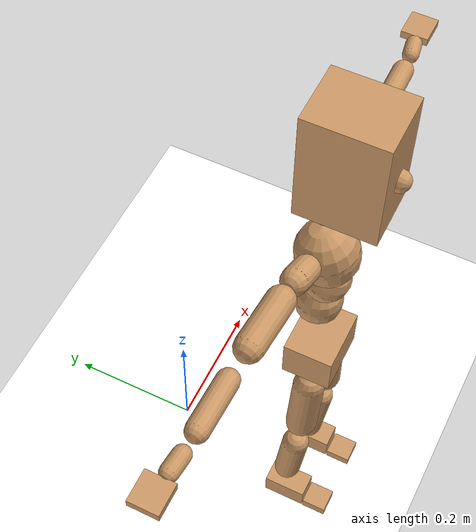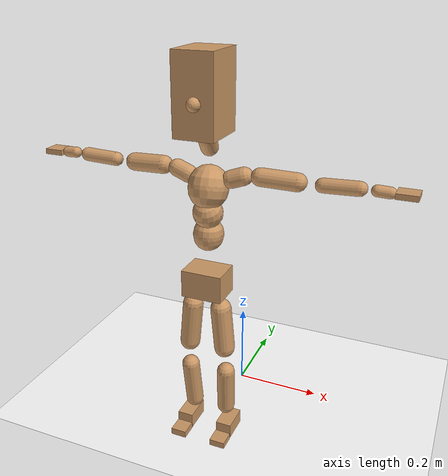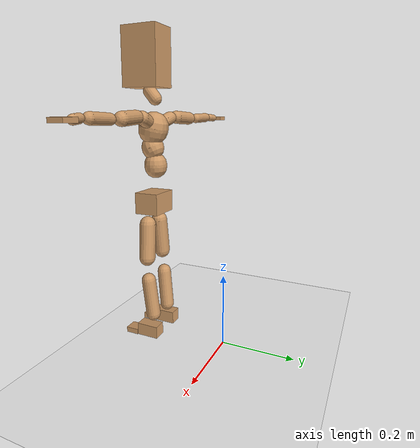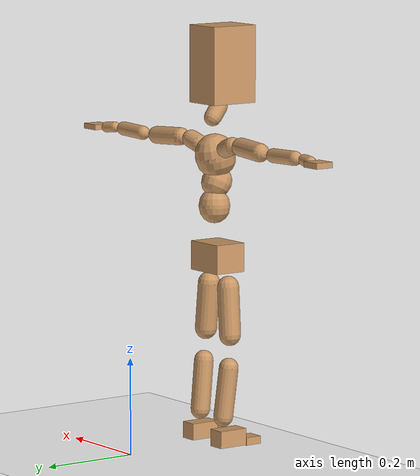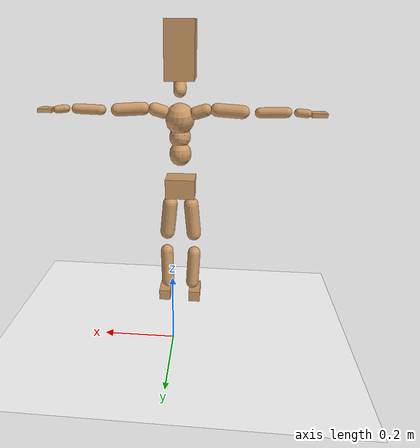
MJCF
<mujoco model="humanoid">
  <option integrator="implicitfast" />

  <visual>
    <global offwidth="1280" offheight="960" />
    <headlight active="1" ambient="0.34 0.34 0.34" diffuse="0.5 0.5 0.5" />
  </visual>

  <default>
    <joint damping="2" stiffness="2" armature="0.01" limited="true" solimplimit="0 .99 .01" />
    <geom condim="1" friction="0.7 0.005 0.0001" solimp=".99 .99 .003" solref="0.015 1" margin="0.001" rgba="0.8 0.6 .4 1" />
    <default class="smplcontact">
      <geom condim="3" friction="1. 0.005 0.0001" solref="0.015 1" solimp="0.98 0.98 0.001" priority="1" />
    </default>
    <default class="stiff_medium">
      <joint stiffness="10" />
    </default>
    <default class="stiff_medium_higher">
      <joint stiffness="50" />
    </default>
    <default class="stiff_high">
      <joint stiffness="100" />
    </default>
  </default>

  <asset>
    <texture type="skybox" builtin="gradient" rgb1="0.99 0.99 0.99" rgb2="0.608 0.828 0.892" width="100" />
    <texture builtin="flat" height="1278" mark="cross" markrgb="1 1 1" name="texgeom" random="0.01" rgb1="0.8 0.6 0.4" rgb2="0.8 0.6 0.4" type="cube" width="127" />
    <texture name="texplane" type="2d" builtin="checker" markrgb="1 1 1" rgb1="0.756 0.772 0.76" rgb2="0.6 0.6 0.6" width="100" height="100" />
    <material name="MatPlane" reflectance="0.5" texture="texplane" texrepeat="1 1" texuniform="true" />
    <material name="geom" texture="texgeom" texuniform="true" />
  </asset>

  <worldbody>
    <light name="tracking_light" pos="0 0 7" dir="0 0 -1" directional="true" cutoff="100" exponent="1" diffuse="1 1 1" specular="0.1 0.1 0.1" mode="trackcom" />
    <camera name="back" pos="0 3 2.4" xyaxes="-1 0 0 0 -1 2" mode="trackcom" />
    <camera name="side" pos="-3 0 2.4" xyaxes="0 -1 0 1 0 2" mode="trackcom" />
    <camera name="front_side" pos="-2.8 -2.8 0.8" xyaxes="0.5 -0.5 0 0.1 0.1 1" mode="trackcom" />
    <geom condim="3" name="floor" pos="0 0 0" rgba="1 1 1 1" size="100 100 .2" type="plane" material="MatPlane" />
    <body name="Pelvis" pos="-0.0018 -0.2233 0.402613" euler="90 0 0">
      <site name="Pelvis" size="0.01" />
      <freejoint name="Pelvis" />
      <geom type="box" pos="-0.0000 -0.0121 -0.0055" size="0.0445263 0.0300729 0.0345714" quat="1.0000 0.0000 0.0000 0.0000" density="3165.830099" name="Pelvis" />
      <body name="L_Hip" pos="0.0299683 -0.0394116 -0.00293215">
        <joint name="L_Hip_x" type="hinge" pos="0 0 0" axis="1 0 0" stiffness="10" range="-160.0 22.92" class="stiff_medium" damping="15" />
        <joint name="L_Hip_y" type="hinge" pos="0 0 0" axis="0 1 0" stiffness="10" range="-70.0 70.0" class="stiff_medium" damping="10" />
        <joint name="L_Hip_z" type="hinge" pos="0 0 0" axis="0 0 1" stiffness="10" range="-28.65 90.0" class="stiff_medium" damping="10" />
        <geom type="capsule" density="2040.816327" fromto="0.00297527 -0.0323399 -0.000388079 0.0118148 -0.129446 -0.00155232" size="0.02284" name="L_Hip" />
        <body name="L_Knee" pos="0.0147901 -0.161786 -0.00194039">
          <joint name="L_Knee_x" type="hinge" pos="0 0 0" axis="1 0 0" range="-5.16 171.89" damping="8" />
          <joint name="L_Knee_y" type="hinge" pos="0 0 0" axis="0 1 0" range="-4.58 6.88" damping="8" />
          <joint name="L_Knee_z" type="hinge" pos="0 0 0" axis="0 0 1" range="-6.88 4.58" damping="8" />
          <geom type="capsule" density="1234.567901" fromto="-0.00116424 -0.0343234 -0.00375143 -0.00470007 -0.137294 -0.015092" size="0.0200918" name="L_Knee" />
          <body name="L_Ankle" pos="-0.0058643 -0.171617 -0.0188434">
            <joint name="L_Ankle_x" type="hinge" pos="0 0 0" axis="1 0 0" range="-45.84 45.84" class="stiff_medium" damping="6" />
            <joint name="L_Ankle_y" type="hinge" pos="0 0 0" axis="0 1 0" range="-74.48 22.92" class="stiff_medium" damping="3" />
            <joint name="L_Ankle_z" type="hinge" pos="0 0 0" axis="0 0 1" range="-4.58 4.58" class="stiff_medium" damping="6" />
            <geom type="box" pos="0.0100469 -0.0103057 0.010435" size="0.0179378 0.0172321 0.0315675" quat="1.0000 0.0000 0.0000 0.0000" density="449.071558" name="L_Ankle" class="smplcontact" />
            <body name="L_Toe" pos="0.0113836 -0.0240609 0.051442">
              <joint name="L_Toe_x" type="hinge" pos="0 0 0" axis="1 0 0" range="-91.67 22.92" />
              <joint name="L_Toe_y" type="hinge" pos="0 0 0" axis="0 1 0" range="-4.58 4.58" />
              <joint name="L_Toe_z" type="hinge" pos="0 0 0" axis="0 0 1" range="-4.58 4.58" />
              <geom type="box" pos="-0.0012936 0.00237159 0.0106937" size="0.0177521 0.00742765 0.0184206" quat="1.0000 0.0000 0.0000 0.0000" density="423.206892" name="L_Toe" class="smplcontact" />
            </body>
          </body>
        </body>
      </body>
      <body name="R_Hip" pos="-0.0291922 -0.0390235 -0.00185416">
        <joint name="R_Hip_x" type="hinge" pos="0 0 0" axis="1 0 0" stiffness="10" range="-160.0 22.92" class="stiff_medium" damping="15" />
        <joint name="R_Hip_y" type="hinge" pos="0 0 0" axis="0 1 0" stiffness="10" range="-70.0 70.0" class="stiff_medium" damping="10" />
        <joint name="R_Hip_z" type="hinge" pos="0 0 0" axis="0 0 1" stiffness="10" range="-90.0 28.65" class="stiff_medium" damping="10" />
        <geom type="capsule" density="2040.816327" fromto="-0.00332023 -0.0329867 -0.000776158 -0.0131947 -0.13199 -0.00306151" size="0.0225058" name="R_Hip" />
        <body name="R_Knee" pos="-0.0165149 -0.164977 -0.00383767">
          <joint name="R_Knee_x" type="hinge" pos="0 0 0" axis="1 0 0" range="-5.16 171.89" damping="8" />
          <joint name="R_Knee_y" type="hinge" pos="0 0 0" axis="0 1 0" range="-6.88 4.58" damping="8" />
          <joint name="R_Knee_z" type="hinge" pos="0 0 0" axis="0 0 1" range="-4.58 6.88" damping="8" />
          <geom type="capsule" density="1234.567901" fromto="0.00137984 -0.0343665 -0.00366519 0.00543311 -0.137423 -0.0145745" size="0.0200918" name="R_Knee" />
          <body name="R_Ankle" pos="0.00681294 -0.17179 -0.0182397">
            <joint name="R_Ankle_x" type="hinge" pos="0 0 0" axis="1 0 0" range="-45.84 45.84" class="stiff_medium" damping="6" />
            <joint name="R_Ankle_y" type="hinge" pos="0 0 0" axis="0 1 0" range="-22.92 74.48" class="stiff_medium" damping="3" />
            <joint name="R_Ankle_z" type="hinge" pos="0 0 0" axis="0 0 1" range="-4.58 4.58" class="stiff_medium" damping="6" />
            <geom type="box" pos="-0.00914142 -0.00750286 0.0110387" size="0.0179378 0.0177521 0.0321246" quat="1.0000 0.0000 0.0000 0.0000" density="434.700981" name="R_Ankle" class="smplcontact" />
            <body name="R_Toe" pos="-0.0109525 -0.0207407 0.0531668">
              <joint name="R_Toe_x" type="hinge" pos="0 0 0" axis="1 0 0" range="-91.67 22.92" />
              <joint name="R_Toe_y" type="hinge" pos="0 0 0" axis="0 1 0" range="-4.58 4.58" />
              <joint name="R_Toe_z" type="hinge" pos="0 0 0" axis="0 0 1" range="-4.58 4.58" />
              <geom type="box" pos="0.00181104 0.00194039 0.00978821" size="0.0177892 0.00802186 0.0183092" quat="1.0000 0.0000 0.0000 0.0000" density="407.384095" name="R_Toe" class="smplcontact" />
            </body>
          </body>
        </body>
      </body>
      <body name="Torso" pos="-0.001318 0.0574649 -0.0140763">
        <joint name="Torso_x" type="hinge" pos="0 0 0" axis="1 0 0" range="-25.78 57.3" class="stiff_medium" damping="15" />
        <joint name="Torso_y" type="hinge" pos="0 0 0" axis="0 1 0" range="-57.3 57.3" class="stiff_high" damping="20" />
        <joint name="Torso_z" type="hinge" pos="0 0 0" axis="0 0 1" range="-34.38 34.38" class="stiff_high" damping="20" />
        <geom type="capsule" density="2040.816327" fromto="0.001318 0.0320538 0.000263601 0.0015816 0.039171 0.000316321" size="0.0320306" name="Torso" />
        <body name="Spine" pos="0.00289961 0.0712776 0.000579921">
          <joint name="Spine_x" type="hinge" pos="0 0 0" axis="1 0 0" stiffness="10" range="-25.78 57.3" class="stiff_medium" damping="15" />
          <joint name="Spine_y" type="hinge" pos="0 0 0" axis="0 1 0" stiffness="10" range="-57.3 57.3" class="stiff_high" damping="8" />
          <joint name="Spine_z" type="hinge" pos="0 0 0" axis="0 0 1" stiffness="20" range="-34.38 34.38" class="stiff_high" damping="12" />
          <geom type="capsule" density="2040.816327" fromto="0.000369041 0.0125474 0.00601009 0.000421761 0.0153416 0.00738082" size="0.0314474" name="Spine" />
          <body name="Chest" pos="0.000790802 0.0278889 0.0133909">
            <joint name="Chest_x" type="hinge" pos="0 0 0" axis="1 0 0" stiffness="10" range="-25.78 57.3" class="stiff_medium" damping="15" />
            <joint name="Chest_y" type="hinge" pos="0 0 0" axis="0 1 0" stiffness="10" range="-57.3 57.3" class="stiff_high" damping="8" />
            <joint name="Chest_z" type="hinge" pos="0 0 0" axis="0 0 1" stiffness="20" range="-34.38 34.38" class="stiff_high" damping="12" />
            <geom type="capsule" density="2040.816327" fromto="-0.000474481 0.0359551 -0.00912058 -0.000527201 0.0439159 -0.0111767" size="0.0417356" name="Chest" />
            <body name="Neck" pos="-0.00147616 0.112768 -0.0226169">
              <joint name="Neck_x" type="hinge" pos="0 0 0" axis="1 0 0" range="-28.65 57.3" class="stiff_medium_higher" damping="10" />
              <joint name="Neck_y" type="hinge" pos="0 0 0" axis="0 1 0" range="-40.11 40.11" class="stiff_medium_higher" damping="10" />
              <joint name="Neck_z" type="hinge" pos="0 0 0" axis="0 0 1" range="-40.11 40.11" class="stiff_medium_higher" damping="10" />
              <geom type="capsule" density="1000" fromto="0.000527201 0.00685361 0.00543017 0.00216152 0.0274145 0.021668" size="0.0181604" name="Neck" />
              <body name="Head" pos="0.00393699 0.0492124 0.03884">
                <joint name="Head_x" type="hinge" pos="0 0 0" axis="1 0 0" range="-28.65 57.3" class="stiff_medium_higher" damping="2" />
                <joint name="Head_y" type="hinge" pos="0 0 0" axis="0 1 0" range="-40.11 40.11" class="stiff_medium_higher" damping="2" />
                <joint name="Head_z" type="hinge" pos="0 0 0" axis="0 0 1" range="-40.11 40.11" class="stiff_medium_higher" damping="2" />
                <geom type="box" pos="-0.00317988 0.0663232 -0.00878253" size="0.0418568 0.0797074 0.0524936" quat="1.0000 0.0000 0.0000 0.0000" density="1018.069894" name="Head" />
                <geom type="capsule" name="nose" size="0.0138141 0.00690706" pos="0 0.052998 0.0378557" quat="1 0 0 0" mass="0" contype="0" conaffinity="0" />
              </body>
            </body>
            <body name="L_Thorax" pos="0.0369256 0.0570285 -0.0159792">
              <joint name="L_Thorax_x" type="hinge" pos="0 0 0" axis="1 0 0" range="-10.89 4.58" class="stiff_medium_higher" damping="20" />
              <joint name="L_Thorax_y" type="hinge" pos="0 0 0" axis="0 1 0" range="-28.65 17.19" class="stiff_medium_higher" damping="20" />
              <joint name="L_Thorax_z" type="hinge" pos="0 0 0" axis="0 0 1" range="-31.51 40.11" class="stiff_medium_higher" damping="20" />
              <geom type="capsule" density="1000" fromto="0.0085285 0.00285845 -0.000843478 0.034114 0.0114338 -0.00332705" size="0.0187416" name="L_Thorax" />
              <body name="L_Shoulder" pos="0.0426425 0.0142923 -0.00417053">
                <joint name="L_Shoulder_x" type="hinge" pos="0 0 0" axis="1 0 0" range="-97.4 97.4" class="stiff_medium" damping="6" />
                <joint name="L_Shoulder_y" type="hinge" pos="0 0 0" axis="0 1 0" range="-108.86 80.21" class="stiff_medium" damping="6" />
                <joint name="L_Shoulder_z" type="hinge" pos="0 0 0" axis="0 0 1" range="-97.4 85.94" class="stiff_medium" damping="6" />
                <geom type="capsule" density="1000" fromto="0.0243203 -0.00121836 -0.00257729 0.097328 -0.00477971 -0.0103092" size="0.0185977" name="L_Shoulder" />
                <body name="L_Elbow" pos="0.121648 -0.00599807 -0.0128865">
                  <joint name="L_Elbow_x" type="hinge" pos="0 0 0" axis="1 0 0" range="-17.19 4.58" damping="5" />
                  <joint name="L_Elbow_y" type="hinge" pos="0 0 0" axis="0 1 0" range="-180.0 17.19" damping="5" />
                  <joint name="L_Elbow_z" type="hinge" pos="0 0 0" axis="0 0 1" range="-100.84 4.58" damping="5" />
                  <geom type="capsule" density="1000" fromto="0.0233362 0.000843478 -9.37198e-05 0.0934386 0.00337391 -0.000421739" size="0.0145688" name="L_Elbow" />
                  <body name="L_Wrist" pos="0.116775 0.00421739 -0.000562319">
                    <joint name="L_Wrist_x" type="hinge" pos="0 0 0" axis="1 0 0" range="-180.0 22.92" />
                    <joint name="L_Wrist_y" type="hinge" pos="0 0 0" axis="0 1 0" range="-17.19 17.19" />
                    <joint name="L_Wrist_z" type="hinge" pos="0 0 0" axis="0 0 1" range="-22.92 22.92" />
                    <geom type="capsule" density="1000" fromto="0.00787246 -0.000749758 -0.0014058 0.0314898 -0.00304589 -0.00562319" size="0.0114392" name="L_Wrist" class="smplcontact" />
                    <body name="L_Hand" pos="0.0393623 -0.00384251 -0.00698212">
                      <joint name="L_Hand_x" type="hinge" pos="0 0 0" axis="1 0 0" range="-17.19 17.19" />
                      <joint name="L_Hand_y" type="hinge" pos="0 0 0" axis="0 1 0" range="-51.57 51.57" />
                      <joint name="L_Hand_z" type="hinge" pos="0 0 0" axis="0 0 1" range="-91.67 91.67" />
                      <geom type="box" pos="0.0231019 0.000468599 -0.00271787" size="0.0210439 0.00568364 0.0193532" quat="1.0000 0.0000 0.0000 0.0000" density="400.552564" name="L_Hand" class="smplcontact" />
                    </body>
                  </body>
                </body>
              </body>
            </body>
            <body name="R_Thorax" pos="-0.0383314 0.0556695 -0.0180879">
              <joint name="R_Thorax_x" type="hinge" pos="0 0 0" axis="1 0 0" range="-10.89 4.58" class="stiff_medium_higher" damping="20" />
              <joint name="R_Thorax_y" type="hinge" pos="0 0 0" axis="0 1 0" range="-17.19 28.65" class="stiff_medium_higher" damping="20" />
              <joint name="R_Thorax_z" type="hinge" pos="0 0 0" axis="0 0 1" range="-40.11 31.51" class="stiff_medium_higher" damping="20" />
              <geom type="capsule" density="1000" fromto="-0.0089971 0.00304589 -0.000843478 -0.0359884 0.0121836 -0.00342077" size="0.0183819" name="R_Thorax" />
              <body name="R_Shoulder" pos="-0.0449855 0.0152763 -0.00426425">
                <joint name="R_Shoulder_x" type="hinge" pos="0 0 0" axis="1 0 0" range="-97.4 97.4" class="stiff_medium" damping="6" />
                <joint name="R_Shoulder_y" type="hinge" pos="0 0 0" axis="0 1 0" range="-80.21 108.86" class="stiff_medium" damping="6" />
                <joint name="R_Shoulder_z" type="hinge" pos="0 0 0" axis="0 0 1" range="-85.94 97.4" class="stiff_medium" damping="6" />
                <geom type="capsule" density="1000" fromto="-0.023758 -0.00126522 -0.00201497 -0.0951256 -0.00501401 -0.00801304" size="0.0191013" name="R_Shoulder" />
                <body name="R_Elbow" pos="-0.118884 -0.00623236 -0.010028">
                  <joint name="R_Elbow_x" type="hinge" pos="0 0 0" axis="1 0 0" range="-17.19 4.58" damping="5" />
                  <joint name="R_Elbow_y" type="hinge" pos="0 0 0" axis="0 1 0" range="-17.19 180.0" damping="5" />
                  <joint name="R_Elbow_z" type="hinge" pos="0 0 0" axis="0 0 1" range="-4.58 100.84" damping="5" />
                  <geom type="capsule" density="1000" fromto="-0.0239454 0.000749758 -0.000515459 -0.0956879 0.00290531 -0.00206183" size="0.0146767" name="R_Elbow" />
                  <body name="R_Wrist" pos="-0.119633 0.00365507 -0.00262415">
                    <joint name="R_Wrist_x" type="hinge" pos="0 0 0" axis="1 0 0" range="-180.0 22.92" />
                    <joint name="R_Wrist_y" type="hinge" pos="0 0 0" axis="0 1 0" range="-17.19 17.19" />
                    <joint name="R_Wrist_z" type="hinge" pos="0 0 0" axis="0 0 1" range="-22.92 22.92" />
                    <geom type="capsule" density="1000" fromto="-0.00791932 -0.000562319 -0.000984058 -0.0317241 -0.00229613 -0.00388937" size="0.011727" name="R_Wrist" class="smplcontact" />
                    <body name="R_Hand" pos="-0.0396435 -0.00285845 -0.00482657">
                      <joint name="R_Hand_x" type="hinge" pos="0 0 0" axis="1 0 0" range="-17.19 17.19" />
                      <joint name="R_Hand_y" type="hinge" pos="0 0 0" axis="0 1 0" range="-51.57 51.57" />
                      <joint name="R_Hand_z" type="hinge" pos="0 0 0" axis="0 0 1" range="-91.67 91.67" />
                      <geom type="box" pos="-0.0216493 -0.000421739 -0.00370193" size="0.0204683 0.00589947 0.0196409" quat="1.0000 0.0000 0.0000 0.0000" density="403.679611" name="R_Hand" class="smplcontact" />
                    </body>
                  </body>
                </body>
              </body>
            </body>
          </body>
        </body>
      </body>
    </body>
  </worldbody>
  <actuator>
    <general name="L_Hip_x" joint="L_Hip_x" biastype="affine" gainprm="287.33006409732246" biasprm="-215.3247604770444 -180 -2.0" ctrllimited="true" ctrlrange="-1 1" forcerange="-360 360" />
    <general name="L_Hip_y" joint="L_Hip_y" biastype="affine" gainprm="219.9114857512855" biasprm="0.0 -180 -2.0" ctrllimited="true" ctrlrange="-1 1" forcerange="-360 360" />
    <general name="L_Hip_z" joint="L_Hip_z" biastype="affine" gainprm="186.3749841742145" biasprm="96.3683546488669 -180 -2.0" ctrllimited="true" ctrlrange="-1 1" forcerange="-360 360" />
    <general name="L_Knee_x" joint="L_Knee_x" biastype="affine" gainprm="278.10948965903646" biasprm="261.8988715665131 -180 -2.0" ctrllimited="true" ctrlrange="-1 1" forcerange="-360 360" />
    <general name="L_Knee_y" joint="L_Knee_y" biastype="affine" gainprm="18.001325905069514" biasprm="3.612831551628262 -180 -2.0" ctrllimited="true" ctrlrange="-1 1" forcerange="-360 360" />
    <general name="L_Knee_z" joint="L_Knee_z" biastype="affine" gainprm="18.001325905069514" biasprm="-3.612831551628262 -180 -2.0" ctrllimited="true" ctrlrange="-1 1" forcerange="-360 360" />
    <general name="L_Ankle_x" joint="L_Ankle_x" biastype="affine" gainprm="72.00530362027807" biasprm="0.0 -90 -2.0" ctrllimited="true" ctrlrange="-1 1" forcerange="-180 180" />
    <general name="L_Ankle_y" joint="L_Ankle_y" biastype="affine" gainprm="76.49778111491148" biasprm="-40.49512930477244 -90 -2.0" ctrllimited="true" ctrlrange="-1 1" forcerange="-180 180" />
    <general name="L_Ankle_z" joint="L_Ankle_z" biastype="affine" gainprm="7.1942471767206255" biasprm="0.0 -90 -2.0" ctrllimited="true" ctrlrange="-1 1" forcerange="-180 180" />
    <general name="L_Toe_x" joint="L_Toe_x" biastype="affine" gainprm="71.99902043497087" biasprm="-43.19689898685965 -72 -0.8" ctrllimited="true" ctrlrange="-1 1" forcerange="-144 144" />
    <general name="L_Toe_y" joint="L_Toe_y" biastype="affine" gainprm="5.755397741376501" biasprm="0.0 -72 -0.8" ctrllimited="true" ctrlrange="-1 1" forcerange="-144 144" />
    <general name="L_Toe_z" joint="L_Toe_z" biastype="affine" gainprm="5.755397741376501" biasprm="0.0 -72 -0.8" ctrllimited="true" ctrlrange="-1 1" forcerange="-144 144" />
    <general name="R_Hip_x" joint="R_Hip_x" biastype="affine" gainprm="287.33006409732246" biasprm="-215.3247604770444 -180 -2.0" ctrllimited="true" ctrlrange="-1 1" forcerange="-360 360" />
    <general name="R_Hip_y" joint="R_Hip_y" biastype="affine" gainprm="219.9114857512855" biasprm="0.0 -180 -2.0" ctrllimited="true" ctrlrange="-1 1" forcerange="-360 360" />
    <general name="R_Hip_z" joint="R_Hip_z" biastype="affine" gainprm="186.3749841742145" biasprm="-96.3683546488669 -180 -2.0" ctrllimited="true" ctrlrange="-1 1" forcerange="-360 360" />
    <general name="R_Knee_x" joint="R_Knee_x" biastype="affine" gainprm="278.10948965903646" biasprm="261.8988715665131 -180 -2.0" ctrllimited="true" ctrlrange="-1 1" forcerange="-360 360" />
    <general name="R_Knee_y" joint="R_Knee_y" biastype="affine" gainprm="18.001325905069514" biasprm="-3.612831551628262 -180 -2.0" ctrllimited="true" ctrlrange="-1 1" forcerange="-360 360" />
    <general name="R_Knee_z" joint="R_Knee_z" biastype="affine" gainprm="18.001325905069514" biasprm="3.612831551628262 -180 -2.0" ctrllimited="true" ctrlrange="-1 1" forcerange="-360 360" />
    <general name="R_Ankle_x" joint="R_Ankle_x" biastype="affine" gainprm="72.00530362027807" biasprm="0.0 -90 -2.0" ctrllimited="true" ctrlrange="-1 1" forcerange="-180 180" />
    <general name="R_Ankle_y" joint="R_Ankle_y" biastype="affine" gainprm="76.49778111491148" biasprm="40.49512930477244 -90 -2.0" ctrllimited="true" ctrlrange="-1 1" forcerange="-180 180" />
    <general name="R_Ankle_z" joint="R_Ankle_z" biastype="affine" gainprm="7.1942471767206255" biasprm="0.0 -90 -2.0" ctrllimited="true" ctrlrange="-1 1" forcerange="-180 180" />
    <general name="R_Toe_x" joint="R_Toe_x" biastype="affine" gainprm="71.99902043497087" biasprm="-43.19689898685965 -72 -0.8" ctrllimited="true" ctrlrange="-1 1" forcerange="-144 144" />
    <general name="R_Toe_y" joint="R_Toe_y" biastype="affine" gainprm="5.755397741376501" biasprm="0.0 -72 -0.8" ctrllimited="true" ctrlrange="-1 1" forcerange="-144 144" />
    <general name="R_Toe_z" joint="R_Toe_z" biastype="affine" gainprm="5.755397741376501" biasprm="0.0 -72 -0.8" ctrllimited="true" ctrlrange="-1 1" forcerange="-144 144" />
    <general name="Torso_x" joint="Torso_x" biastype="affine" gainprm="174.00234510682668" biasprm="66.0153336274335 -240 -4.0" ctrllimited="true" ctrlrange="-1 1" forcerange="-360 360" />
    <general name="Torso_y" joint="Torso_y" biastype="affine" gainprm="240.0176787342602" biasprm="0.0 -240 -4.0" ctrllimited="true" ctrlrange="-1 1" forcerange="-360 360" />
    <general name="Torso_z" joint="Torso_z" biastype="affine" gainprm="144.01060724055614" biasprm="0.0 -240 -4.0" ctrllimited="true" ctrlrange="-1 1" forcerange="-360 360" />
    <general name="Spine_x" joint="Spine_x" biastype="affine" gainprm="174.00234510682668" biasprm="66.0153336274335 -240 -4.0" ctrllimited="true" ctrlrange="-1 1" forcerange="-360 360" />
    <general name="Spine_y" joint="Spine_y" biastype="affine" gainprm="240.0176787342602" biasprm="0.0 -240 -4.0" ctrllimited="true" ctrlrange="-1 1" forcerange="-360 360" />
    <general name="Spine_z" joint="Spine_z" biastype="affine" gainprm="144.01060724055614" biasprm="0.0 -240 -4.0" ctrllimited="true" ctrlrange="-1 1" forcerange="-360 360" />
    <general name="Chest_x" joint="Chest_x" biastype="affine" gainprm="174.00234510682668" biasprm="66.0153336274335 -240 -4.0" ctrllimited="true" ctrlrange="-1 1" forcerange="-360 360" />
    <general name="Chest_y" joint="Chest_y" biastype="affine" gainprm="240.0176787342602" biasprm="0.0 -240 -4.0" ctrllimited="true" ctrlrange="-1 1" forcerange="-360 360" />
    <general name="Chest_z" joint="Chest_z" biastype="affine" gainprm="144.01060724055614" biasprm="0.0 -240 -4.0" ctrllimited="true" ctrlrange="-1 1" forcerange="-360 360" />
    <general name="Neck_x" joint="Neck_x" biastype="affine" gainprm="27.00198885760427" biasprm="9.000662952534757 -36 -0.8" ctrllimited="true" ctrlrange="-1 1" forcerange="-72 72" />
    <general name="Neck_y" joint="Neck_y" biastype="affine" gainprm="25.20185626709732" biasprm="0.0 -36 -0.8" ctrllimited="true" ctrlrange="-1 1" forcerange="-72 72" />
    <general name="Neck_z" joint="Neck_z" biastype="affine" gainprm="25.20185626709732" biasprm="0.0 -36 -0.8" ctrllimited="true" ctrlrange="-1 1" forcerange="-72 72" />
    <general name="Head_x" joint="Head_x" biastype="affine" gainprm="18.001325905069514" biasprm="6.000441968356505 -24 -0.8" ctrllimited="true" ctrlrange="-1 1" forcerange="-48 48" />
    <general name="Head_y" joint="Head_y" biastype="affine" gainprm="16.801237511398213" biasprm="0.0 -24 -0.8" ctrllimited="true" ctrlrange="-1 1" forcerange="-48 48" />
    <general name="Head_z" joint="Head_z" biastype="affine" gainprm="16.801237511398213" biasprm="0.0 -24 -0.8" ctrllimited="true" ctrlrange="-1 1" forcerange="-48 48" />
    <general name="L_Thorax_x" joint="L_Thorax_x" biastype="affine" gainprm="16.200146117011364" biasprm="-6.6078165480505335 -120 -1.6" ctrllimited="true" ctrlrange="-1 1" forcerange="-240 240" />
    <general name="L_Thorax_y" joint="L_Thorax_y" biastype="affine" gainprm="48.00353574685204" biasprm="-12.00088393671301 -120 -1.6" ctrllimited="true" ctrlrange="-1 1" forcerange="-240 240" />
    <general name="L_Thorax_z" joint="L_Thorax_z" biastype="affine" gainprm="75.00028861670033" biasprm="9.00589894029074 -120 -1.6" ctrllimited="true" ctrlrange="-1 1" forcerange="-240 240" />
    <general name="L_Shoulder_x" joint="L_Shoulder_x" biastype="affine" gainprm="81.5976331892389" biasprm="0.0 -48 -1.6" ctrllimited="true" ctrlrange="-1 1" forcerange="-96 96" />
    <general name="L_Shoulder_y" joint="L_Shoulder_y" biastype="affine" gainprm="79.19745640189629" biasprm="-12.00088393671301 -48 -1.6" ctrllimited="true" ctrlrange="-1 1" forcerange="-96 96" />
    <general name="L_Shoulder_z" joint="L_Shoulder_z" biastype="affine" gainprm="76.79727961455369" biasprm="-4.800353574685214 -48 -1.6" ctrllimited="true" ctrlrange="-1 1" forcerange="-96 96" />
    <general name="L_Elbow_x" joint="L_Elbow_x" biastype="affine" gainprm="13.67849441372996" biasprm="-7.923096672353461 -72 -0.8" ctrllimited="true" ctrlrange="-1 1" forcerange="-144 144" />
    <general name="L_Elbow_y" joint="L_Elbow_y" biastype="affine" gainprm="123.89813107227425" biasprm="-102.29653998619085 -72 -0.8" ctrllimited="true" ctrlrange="-1 1" forcerange="-144 144" />
    <general name="L_Elbow_z" joint="L_Elbow_z" biastype="affine" gainprm="66.23733950828719" biasprm="-60.4819417669107 -72 -0.8" ctrllimited="true" ctrlrange="-1 1" forcerange="-144 144" />
    <general name="L_Wrist_x" joint="L_Wrist_x" biastype="affine" gainprm="21.24973270888136" biasprm="-16.449379134196157 -12 -0.8" ctrllimited="true" ctrlrange="-1 1" forcerange="-24 24" />
    <general name="L_Wrist_y" joint="L_Wrist_y" biastype="affine" gainprm="3.6002651810139037" biasprm="0.0 -12 -0.8" ctrllimited="true" ctrlrange="-1 1" forcerange="-24 24" />
    <general name="L_Wrist_z" joint="L_Wrist_z" biastype="affine" gainprm="4.800353574685205" biasprm="0.0 -12 -0.8" ctrllimited="true" ctrlrange="-1 1" forcerange="-24 24" />
    <general name="L_Hand_x" joint="L_Hand_x" biastype="affine" gainprm="3.6002651810139037" biasprm="0.0 -12 -0.8" ctrllimited="true" ctrlrange="-1 1" forcerange="-24 24" />
    <general name="L_Hand_y" joint="L_Hand_y" biastype="affine" gainprm="10.800795543041708" biasprm="0.0 -12 -0.8" ctrllimited="true" ctrlrange="-1 1" forcerange="-24 24" />
    <general name="L_Hand_z" joint="L_Hand_z" biastype="affine" gainprm="19.199319903638422" biasprm="0.0 -12 -0.8" ctrllimited="true" ctrlrange="-1 1" forcerange="-24 24" />
    <general name="R_Thorax_x" joint="R_Thorax_x" biastype="affine" gainprm="16.200146117011364" biasprm="-6.6078165480505335 -120 -1.6" ctrllimited="true" ctrlrange="-1 1" forcerange="-240 240" />
    <general name="R_Thorax_y" joint="R_Thorax_y" biastype="affine" gainprm="48.00353574685204" biasprm="12.000883936713002 -120 -1.6" ctrllimited="true" ctrlrange="-1 1" forcerange="-240 240" />
    <general name="R_Thorax_z" joint="R_Thorax_z" biastype="affine" gainprm="75.00028861670033" biasprm="-9.00589894029074 -120 -1.6" ctrllimited="true" ctrlrange="-1 1" forcerange="-240 240" />
    <general name="R_Shoulder_x" joint="R_Shoulder_x" biastype="affine" gainprm="81.5976331892389" biasprm="0.0 -48 -1.6" ctrllimited="true" ctrlrange="-1 1" forcerange="-96 96" />
    <general name="R_Shoulder_y" joint="R_Shoulder_y" biastype="affine" gainprm="79.19745640189629" biasprm="12.00088393671301 -48 -1.6" ctrllimited="true" ctrlrange="-1 1" forcerange="-96 96" />
    <general name="R_Shoulder_z" joint="R_Shoulder_z" biastype="affine" gainprm="76.79727961455369" biasprm="4.800353574685204 -48 -1.6" ctrllimited="true" ctrlrange="-1 1" forcerange="-96 96" />
    <general name="R_Elbow_x" joint="R_Elbow_x" biastype="affine" gainprm="13.67849441372996" biasprm="-7.923096672353461 -72 -0.8" ctrllimited="true" ctrlrange="-1 1" forcerange="-144 144" />
    <general name="R_Elbow_y" joint="R_Elbow_y" biastype="affine" gainprm="123.89813107227425" biasprm="102.29653998619085 -72 -0.8" ctrllimited="true" ctrlrange="-1 1" forcerange="-144 144" />
    <general name="R_Elbow_z" joint="R_Elbow_z" biastype="affine" gainprm="66.23733950828719" biasprm="60.481941766910694 -72 -0.8" ctrllimited="true" ctrlrange="-1 1" forcerange="-144 144" />
    <general name="R_Wrist_x" joint="R_Wrist_x" biastype="affine" gainprm="21.24973270888136" biasprm="-16.449379134196157 -12 -0.8" ctrllimited="true" ctrlrange="-1 1" forcerange="-24 24" />
    <general name="R_Wrist_y" joint="R_Wrist_y" biastype="affine" gainprm="3.6002651810139037" biasprm="0.0 -12 -0.8" ctrllimited="true" ctrlrange="-1 1" forcerange="-24 24" />
    <general name="R_Wrist_z" joint="R_Wrist_z" biastype="affine" gainprm="4.800353574685205" biasprm="0.0 -12 -0.8" ctrllimited="true" ctrlrange="-1 1" forcerange="-24 24" />
    <general name="R_Hand_x" joint="R_Hand_x" biastype="affine" gainprm="3.6002651810139037" biasprm="0.0 -12 -0.8" ctrllimited="true" ctrlrange="-1 1" forcerange="-24 24" />
    <general name="R_Hand_y" joint="R_Hand_y" biastype="affine" gainprm="10.800795543041708" biasprm="0.0 -12 -0.8" ctrllimited="true" ctrlrange="-1 1" forcerange="-24 24" />
    <general name="R_Hand_z" joint="R_Hand_z" biastype="affine" gainprm="19.199319903638422" biasprm="0.0 -12 -0.8" ctrllimited="true" ctrlrange="-1 1" forcerange="-24 24" />
  </actuator>
  <contact>
    <exclude body1="Torso" body2="Chest" />
    <exclude body1="Head" body2="Chest" />
    <exclude body1="R_Knee" body2="R_Toe" />
    <exclude body1="R_Knee" body2="L_Ankle" />
    <exclude body1="R_Knee" body2="L_Toe" />
    <exclude body1="L_Knee" body2="L_Toe" />
    <exclude body1="L_Knee" body2="R_Ankle" />
    <exclude body1="L_Knee" body2="R_Toe" />
    <exclude body1="L_Shoulder" body2="Chest" />
    <exclude body1="R_Shoulder" body2="Chest" />
  </contact>
  <sensor>
    <framelinvel name="sensor_Pelvis_framelinvel" objtype="xbody" objname="Pelvis" />
    <framelinvel name="sensor_L_Hip_framelinvel" objtype="xbody" objname="L_Hip" />
    <framelinvel name="sensor_L_Knee_framelinvel" objtype="xbody" objname="L_Knee" />
    <framelinvel name="sensor_L_Ankle_framelinvel" objtype="xbody" objname="L_Ankle" />
    <framelinvel name="sensor_L_Toe_framelinvel" objtype="xbody" objname="L_Toe" />
    <framelinvel name="sensor_R_Hip_framelinvel" objtype="xbody" objname="R_Hip" />
    <framelinvel name="sensor_R_Knee_framelinvel" objtype="xbody" objname="R_Knee" />
    <framelinvel name="sensor_R_Ankle_framelinvel" objtype="xbody" objname="R_Ankle" />
    <framelinvel name="sensor_R_Toe_framelinvel" objtype="xbody" objname="R_Toe" />
    <framelinvel name="sensor_Torso_framelinvel" objtype="xbody" objname="Torso" />
    <framelinvel name="sensor_Spine_framelinvel" objtype="xbody" objname="Spine" />
    <framelinvel name="sensor_Chest_framelinvel" objtype="xbody" objname="Chest" />
    <framelinvel name="sensor_Neck_framelinvel" objtype="xbody" objname="Neck" />
    <framelinvel name="sensor_Head_framelinvel" objtype="xbody" objname="Head" />
    <framelinvel name="sensor_L_Thorax_framelinvel" objtype="xbody" objname="L_Thorax" />
    <framelinvel name="sensor_L_Shoulder_framelinvel" objtype="xbody" objname="L_Shoulder" />
    <framelinvel name="sensor_L_Elbow_framelinvel" objtype="xbody" objname="L_Elbow" />
    <framelinvel name="sensor_L_Wrist_framelinvel" objtype="xbody" objname="L_Wrist" />
    <framelinvel name="sensor_L_Hand_framelinvel" objtype="xbody" objname="L_Hand" />
    <framelinvel name="sensor_R_Thorax_framelinvel" objtype="xbody" objname="R_Thorax" />
    <framelinvel name="sensor_R_Shoulder_framelinvel" objtype="xbody" objname="R_Shoulder" />
    <framelinvel name="sensor_R_Elbow_framelinvel" objtype="xbody" objname="R_Elbow" />
    <framelinvel name="sensor_R_Wrist_framelinvel" objtype="xbody" objname="R_Wrist" />
    <framelinvel name="sensor_R_Hand_framelinvel" objtype="xbody" objname="R_Hand" />
    <frameangvel name="sensor_Pelvis_frameangvel" objtype="xbody" objname="Pelvis" />
    <frameangvel name="sensor_L_Hip_frameangvel" objtype="xbody" objname="L_Hip" />
    <frameangvel name="sensor_L_Knee_frameangvel" objtype="xbody" objname="L_Knee" />
    <frameangvel name="sensor_L_Ankle_frameangvel" objtype="xbody" objname="L_Ankle" />
    <frameangvel name="sensor_L_Toe_frameangvel" objtype="xbody" objname="L_Toe" />
    <frameangvel name="sensor_R_Hip_frameangvel" objtype="xbody" objname="R_Hip" />
    <frameangvel name="sensor_R_Knee_frameangvel" objtype="xbody" objname="R_Knee" />
    <frameangvel name="sensor_R_Ankle_frameangvel" objtype="xbody" objname="R_Ankle" />
    <frameangvel name="sensor_R_Toe_frameangvel" objtype="xbody" objname="R_Toe" />
    <frameangvel name="sensor_Torso_frameangvel" objtype="xbody" objname="Torso" />
    <frameangvel name="sensor_Spine_frameangvel" objtype="xbody" objname="Spine" />
    <frameangvel name="sensor_Chest_frameangvel" objtype="xbody" objname="Chest" />
    <frameangvel name="sensor_Neck_frameangvel" objtype="xbody" objname="Neck" />
    <frameangvel name="sensor_Head_frameangvel" objtype="xbody" objname="Head" />
    <frameangvel name="sensor_L_Thorax_frameangvel" objtype="xbody" objname="L_Thorax" />
    <frameangvel name="sensor_L_Shoulder_frameangvel" objtype="xbody" objname="L_Shoulder" />
    <frameangvel name="sensor_L_Elbow_frameangvel" objtype="xbody" objname="L_Elbow" />
    <frameangvel name="sensor_L_Wrist_frameangvel" objtype="xbody" objname="L_Wrist" />
    <frameangvel name="sensor_L_Hand_frameangvel" objtype="xbody" objname="L_Hand" />
    <frameangvel name="sensor_R_Thorax_frameangvel" objtype="xbody" objname="R_Thorax" />
    <frameangvel name="sensor_R_Shoulder_frameangvel" objtype="xbody" objname="R_Shoulder" />
    <frameangvel name="sensor_R_Elbow_frameangvel" objtype="xbody" objname="R_Elbow" />
    <frameangvel name="sensor_R_Wrist_frameangvel" objtype="xbody" objname="R_Wrist" />
    <frameangvel name="sensor_R_Hand_frameangvel" objtype="xbody" objname="R_Hand" />
    <subtreelinvel name="Chest_subtreelinvel" body="Chest" />
    <gyro name="Pelvis_gyro" site="Pelvis" />
  </sensor>
</mujoco>
